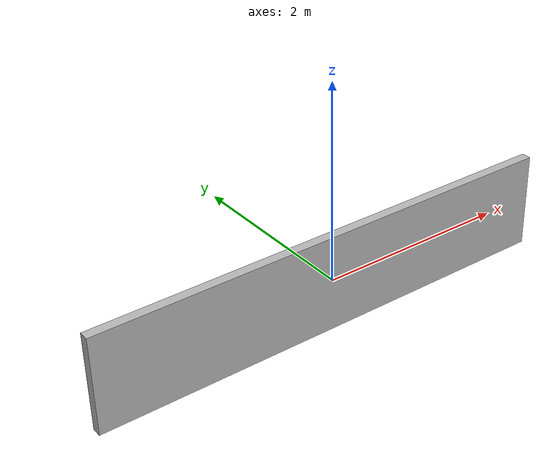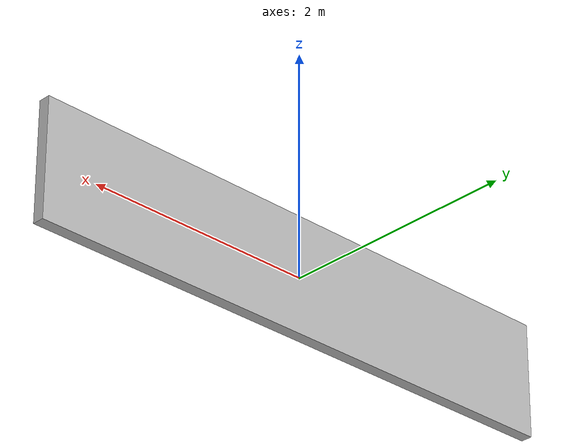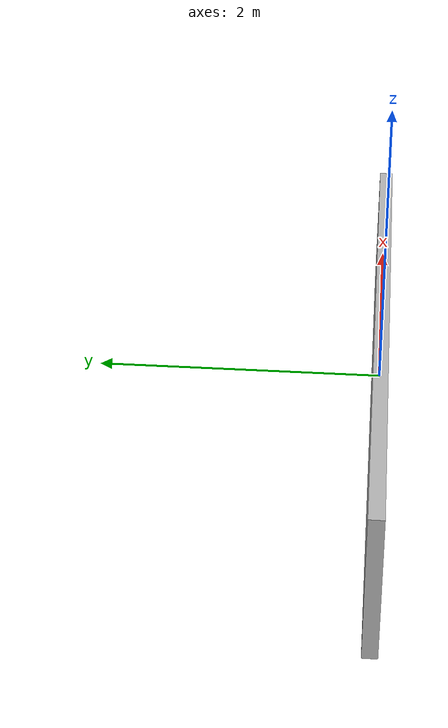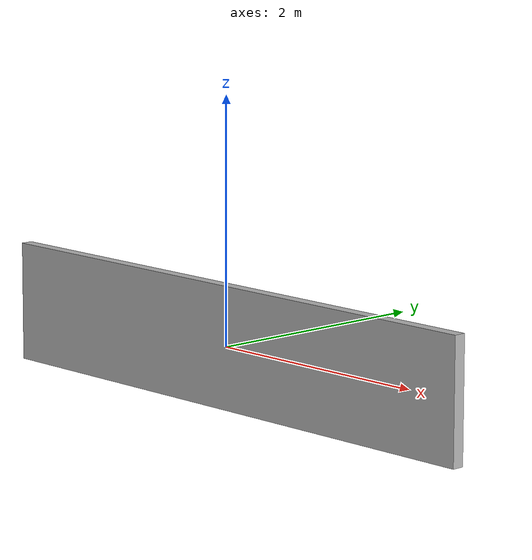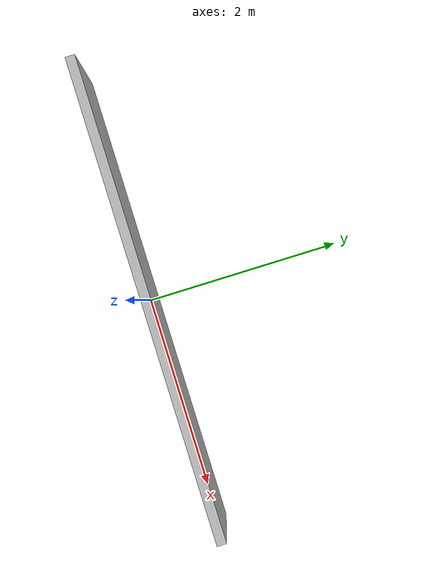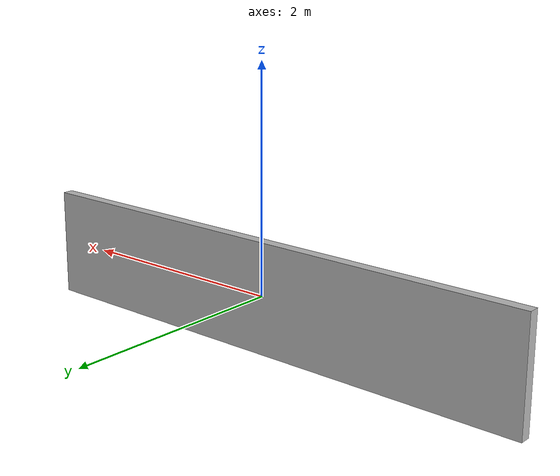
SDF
<?xml version="1.0" ?>
<sdf version="1.7">
  <model name="wall_5_x">
   <static>true</static>
    <link name="link">
      <collision name="collision">
        <geometry>
          <box>
            <size>5 0.1 1</size>  <!-- default size -->
          </box>
        </geometry>
      </collision>
      <visual name="visual">
        <geometry>
          <box>
            <size>5 0.1 1</size>
          </box>
        </geometry>
      </visual>
    </link>
  </model>
</sdf>
